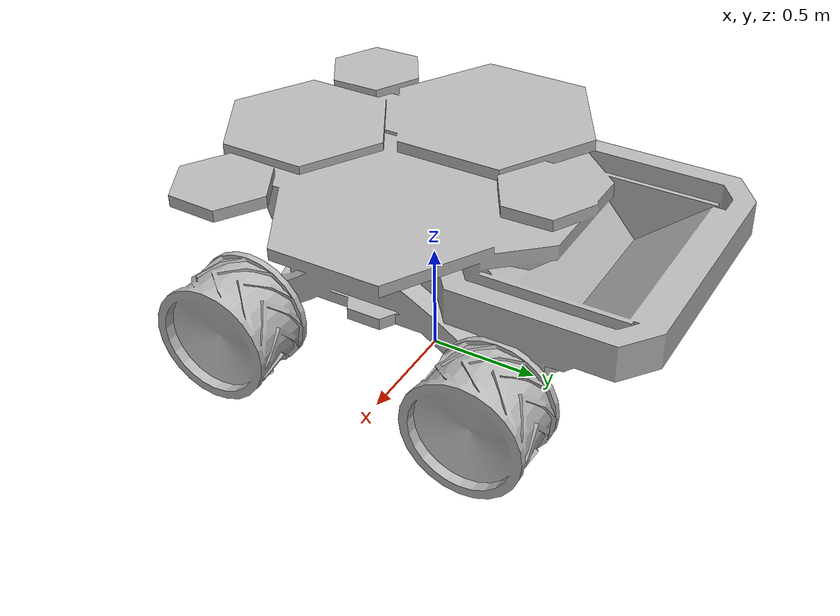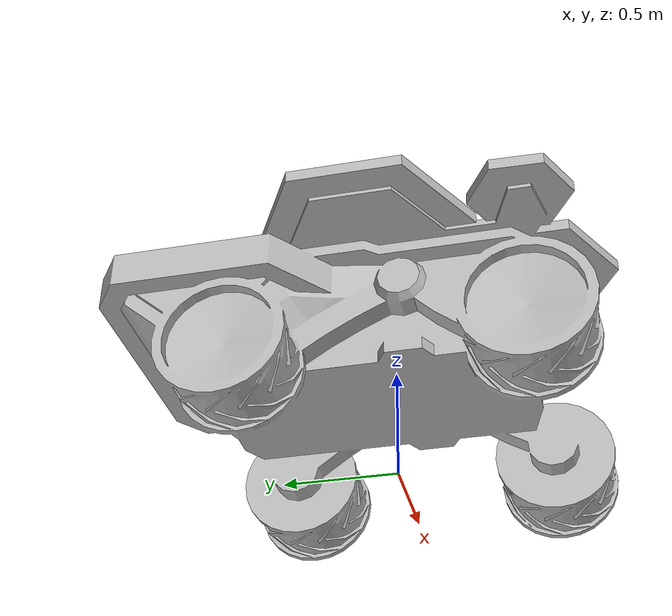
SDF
<?xml version="1.0" ?>
<sdf version="1.5">
  <model name="Rover">
      <static>1</static>
      <link name='link'>
        <collision name="collision">
            <geometry>
              <mesh>
                <scale>2 2 2</scale>
                <uri>model://Rover/meshes/Rover.dae</uri>
              </mesh>
            </geometry>
        <surface>
          <friction>
            <ode>
              <mu>100</mu>
              <mu2>50</mu2>
            </ode>
          </friction>
        </surface>
      </collision>
        <visual name='visual'>
          <geometry>
            <mesh>
              <uri>model://Rover/meshes/Rover.dae</uri>
              <scale>2 2 2</scale>
            </mesh>
          </geometry>
        </visual>
      </link>
  </model>
</sdf>
